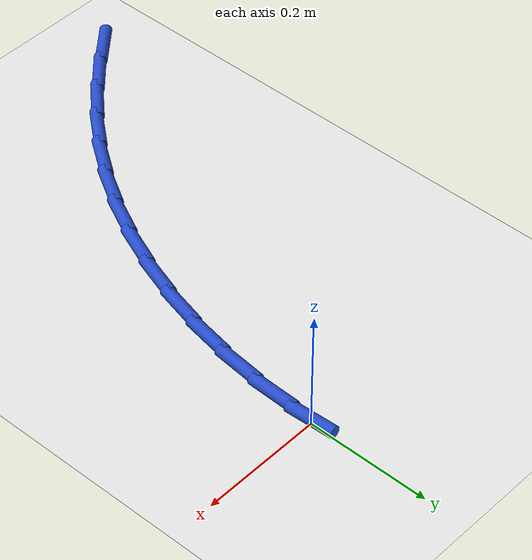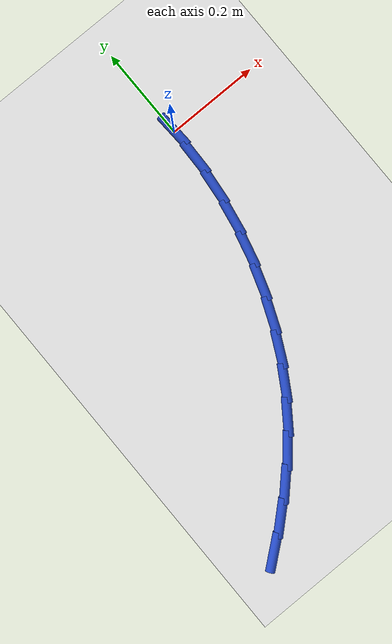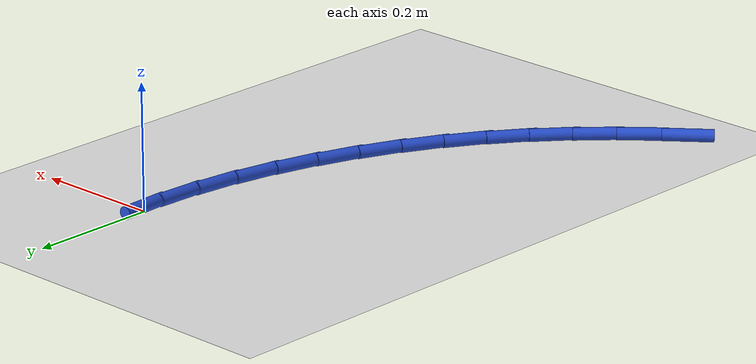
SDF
<sdf version="1.6">
 <world name="default">
  <model name="ground_plane">
   <static>1</static>
   <link name="link">
    <collision name="collision">
     <geometry><plane><normal>0 0 1</normal><size>100 100</size></plane></geometry>
     <surface><friction><ode><mu>100</mu><mu2>50</mu2></ode></friction></surface>
    </collision>
    <visual name="visual">
     <cast_shadows>0</cast_shadows>
     <geometry><plane><normal>0 0 1</normal><size>100 100</size></plane></geometry>
     <material>
      <script><uri>file://media/materials/scripts/gazebo.material</uri><name>Gazebo/WhiteGlow</name></script>
     </material>
    </visual>
   </link>
  </model>
  <model name="line">
   <link name="link_0">
    <pose>2.42861286636753e-17 5.551115123125783e-17 0.01 0 1.57 -1.521735817229532</pose>
    <collision name="collision">
     <geometry><cylinder><radius>0.01</radius><length>0.08</length></cylinder></geometry>
    </collision>
    <visual name="visual">
     <material>
      <script><name>Gazebo/Blue</name><uri>file://media/materials/scripts/gazebo.material</uri></script>
     </material>
     <geometry><cylinder><radius>0.01</radius><length>0.08</length></cylinder></geometry>
    </visual>
   </link>
   <link name="link_97">
    <pose>-0.38307781798874624 -0.7744197625472325 0.01 0 1.57 0.6834491452490764</pose>
    <collision name="collision">
     <geometry><cylinder><radius>0.01</radius><length>0.08</length></cylinder></geometry>
    </collision>
    <visual name="visual">
     <material>
      <script><name>Gazebo/Blue</name><uri>file://media/materials/scripts/gazebo.material</uri></script>
     </material>
     <geometry><cylinder><radius>0.01</radius><length>0.08</length></cylinder></geometry>
    </visual>
   </link>
   <link name="link_98">
    <pose>-0.32979278251041627 -0.7310253882688125 0.01 0 1.57 0.7408170118033165</pose>
    <collision name="collision">
     <geometry><cylinder><radius>0.01</radius><length>0.08</length></cylinder></geometry>
    </collision>
    <visual name="visual">
     <material>
      <script><name>Gazebo/Blue</name><uri>file://media/materials/scripts/gazebo.material</uri></script>
     </material>
     <geometry><cylinder><radius>0.01</radius><length>0.08</length></cylinder></geometry>
    </visual>
   </link>
   <link name="link_99">
    <pose>-0.28000862370757795 -0.6854933525581685 0.01 0 1.57 0.80614162960911</pose>
    <collision name="collision">
     <geometry><cylinder><radius>0.01</radius><length>0.08</length></cylinder></geometry>
    </collision>
    <visual name="visual">
     <material>
      <script><name>Gazebo/Blue</name><uri>file://media/materials/scripts/gazebo.material</uri></script>
     </material>
     <geometry><cylinder><radius>0.01</radius><length>0.08</length></cylinder></geometry>
    </visual>
   </link>
   <link name="link_100">
    <pose>-0.2338203045555246 -0.637347944202678 0.01 0 1.57 0.8783418981144223</pose>
    <collision name="collision">
     <geometry><cylinder><radius>0.01</radius><length>0.08</length></cylinder></geometry>
    </collision>
    <visual name="visual">
     <material>
      <script><name>Gazebo/Blue</name><uri>file://media/materials/scripts/gazebo.material</uri></script>
     </material>
     <geometry><cylinder><radius>0.01</radius><length>0.08</length></cylinder></geometry>
    </visual>
   </link>
   <link name="link_101">
    <pose>-0.1913227880295523 -0.5861134519897223 0.01 0 1.57 0.9557636292129432</pose>
    <collision name="collision">
     <geometry><cylinder><radius>0.01</radius><length>0.08</length></cylinder></geometry>
    </collision>
    <visual name="visual">
     <material>
      <script><name>Gazebo/Blue</name><uri>file://media/materials/scripts/gazebo.material</uri></script>
     </material>
     <geometry><cylinder><radius>0.01</radius><length>0.08</length></cylinder></geometry>
    </visual>
   </link>
   <link name="link_102">
    <pose>-0.152611115149798 -0.5313149326975118 0.01 0 1.57 1.0346463094777922</pose>
    <collision name="collision">
     <geometry><cylinder><radius>0.01</radius><length>0.08</length></cylinder></geometry>
    </collision>
    <visual name="visual">
     <material>
      <script><name>Gazebo/Blue</name><uri>file://media/materials/scripts/gazebo.material</uri></script>
     </material>
     <geometry><cylinder><radius>0.01</radius><length>0.08</length></cylinder></geometry>
    </visual>
   </link>
   <link name="link_103">
    <pose>-0.11780733959895733 -0.47274325793942806 0.01 0 1.57 1.1102889061752552</pose>
    <collision name="collision">
     <geometry><cylinder><radius>0.01</radius><length>0.08</length></cylinder></geometry>
    </collision>
    <visual name="visual">
     <material>
      <script><name>Gazebo/Blue</name><uri>file://media/materials/scripts/gazebo.material</uri></script>
     </material>
     <geometry><cylinder><radius>0.01</radius><length>0.08</length></cylinder></geometry>
    </visual>
   </link>
   <link name="link_104">
    <pose>-0.08709998204718161 -0.4108433596710379 0.01 0 1.57 1.1831322519514194</pose>
    <collision name="collision">
     <geometry><cylinder><radius>0.01</radius><length>0.08</length></cylinder></geometry>
    </collision>
    <visual name="visual">
     <material>
      <script><name>Gazebo/Blue</name><uri>file://media/materials/scripts/gazebo.material</uri></script>
     </material>
     <geometry><cylinder><radius>0.01</radius><length>0.08</length></cylinder></geometry>
    </visual>
   </link>
   <link name="link_105">
    <pose>-0.06068760294595548 -0.3461589651004808 0.01 0 1.57 1.2542934692445922</pose>
    <collision name="collision">
     <geometry><cylinder><radius>0.01</radius><length>0.08</length></cylinder></geometry>
    </collision>
    <visual name="visual">
     <material>
      <script><name>Gazebo/Blue</name><uri>file://media/materials/scripts/gazebo.material</uri></script>
     </material>
     <geometry><cylinder><radius>0.01</radius><length>0.08</length></cylinder></geometry>
    </visual>
   </link>
   <link name="link_106">
    <pose>-0.038768762746762254 -0.27923380143589305 0.01 0 1.57 1.324841515056679</pose>
    <collision name="collision">
     <geometry><cylinder><radius>0.01</radius><length>0.08</length></cylinder></geometry>
    </collision>
    <visual name="visual">
     <material>
      <script><name>Gazebo/Blue</name><uri>file://media/materials/scripts/gazebo.material</uri></script>
     </material>
     <geometry><cylinder><radius>0.01</radius><length>0.08</length></cylinder></geometry>
    </visual>
   </link>
   <link name="link_107">
    <pose>-0.02154202190108631 -0.21061159588541375 0.01 0 1.57 1.395807892096458</pose>
    <collision name="collision">
     <geometry><cylinder><radius>0.01</radius><length>0.08</length></cylinder></geometry>
    </collision>
    <visual name="visual">
     <material>
      <script><name>Gazebo/Blue</name><uri>file://media/materials/scripts/gazebo.material</uri></script>
     </material>
     <geometry><cylinder><radius>0.01</radius><length>0.08</length></cylinder></geometry>
    </visual>
   </link>
   <link name="link_108">
    <pose>-0.009205940860411219 -0.14083607565717937 0.01 0 1.57 1.468197706332629</pose>
    <collision name="collision">
     <geometry><cylinder><radius>0.01</radius><length>0.08</length></cylinder></geometry>
    </collision>
    <visual name="visual">
     <material>
      <script><name>Gazebo/Blue</name><uri>file://media/materials/scripts/gazebo.material</uri></script>
     </material>
     <geometry><cylinder><radius>0.01</radius><length>0.08</length></cylinder></geometry>
    </visual>
   </link>
   <link name="link_109">
    <pose>-0.0019590800762211806 -0.07045096795932937 0.01 0 1.57 1.5429957812241448</pose>
    <collision name="collision">
     <geometry><cylinder><radius>0.01</radius><length>0.08</length></cylinder></geometry>
    </collision>
    <visual name="visual">
     <material>
      <script><name>Gazebo/Blue</name><uri>file://media/materials/scripts/gazebo.material</uri></script>
     </material>
     <geometry><cylinder><radius>0.01</radius><length>0.08</length></cylinder></geometry>
    </visual>
   </link>
  </model>
 </world>
</sdf>
